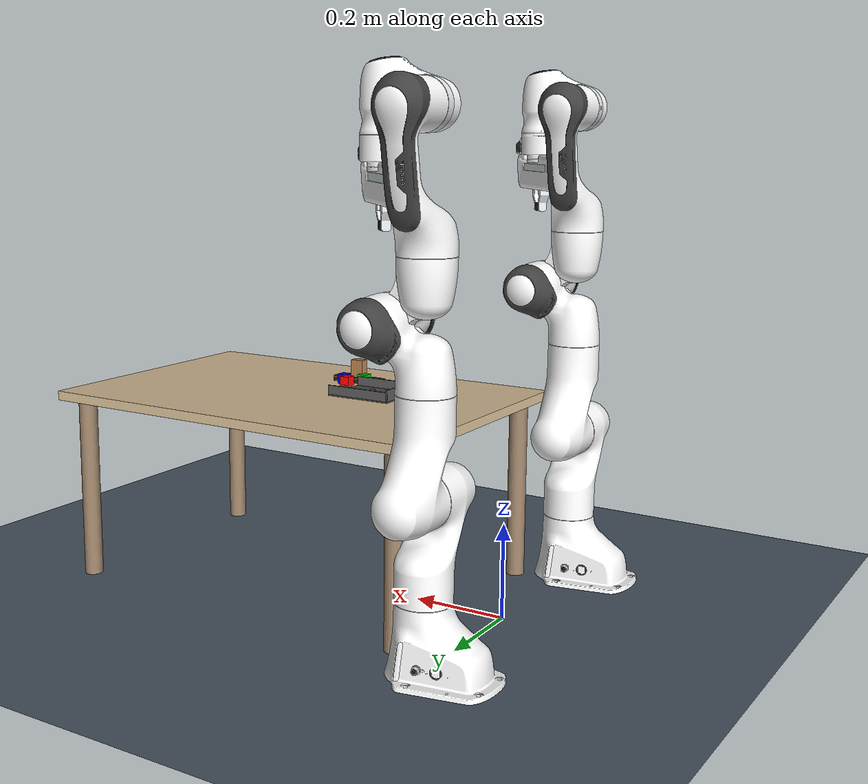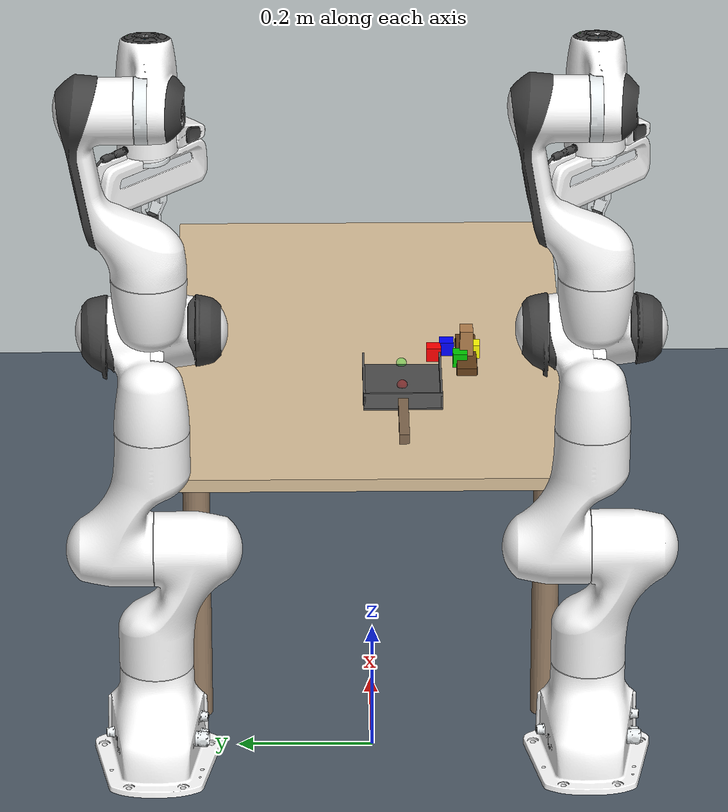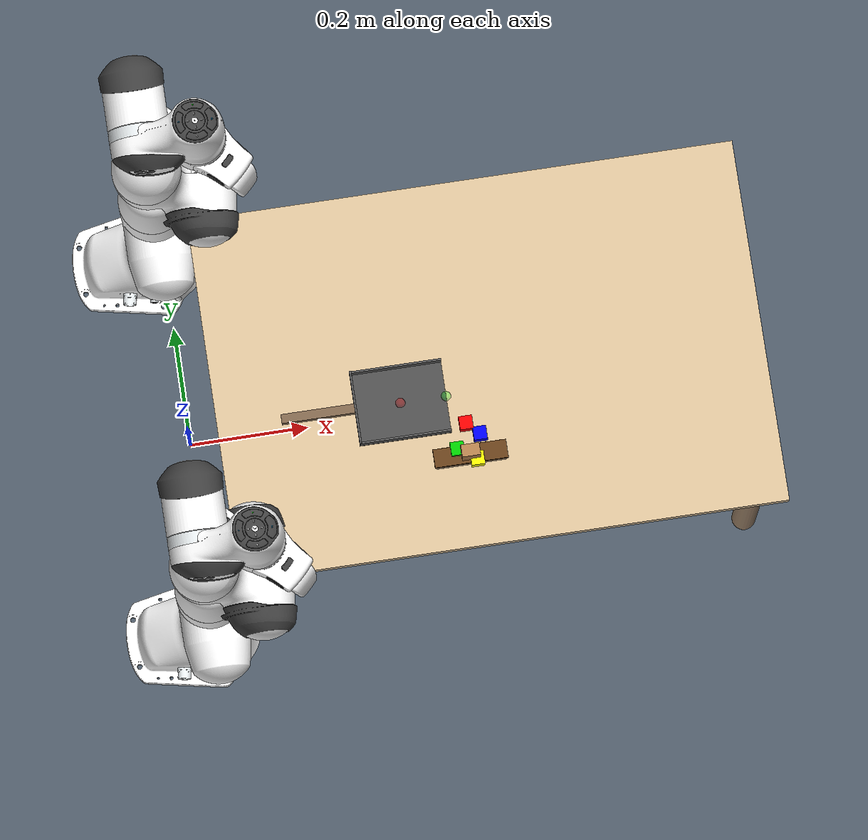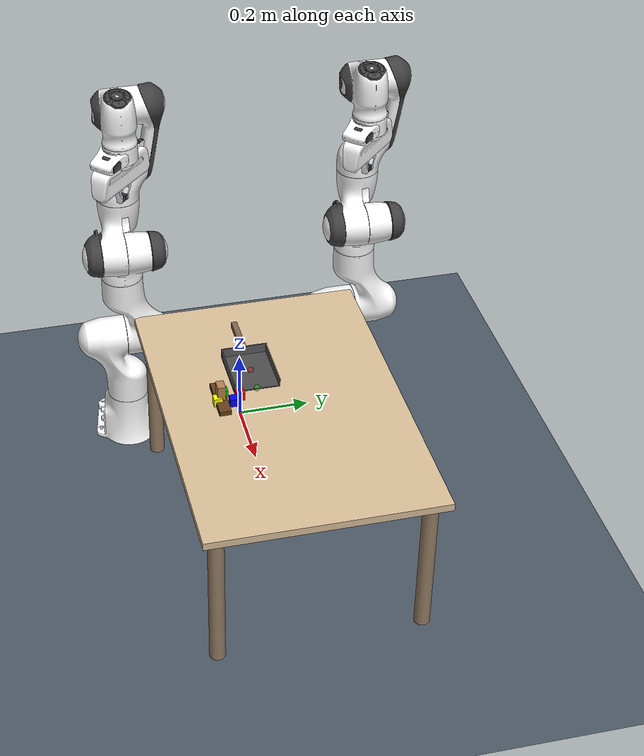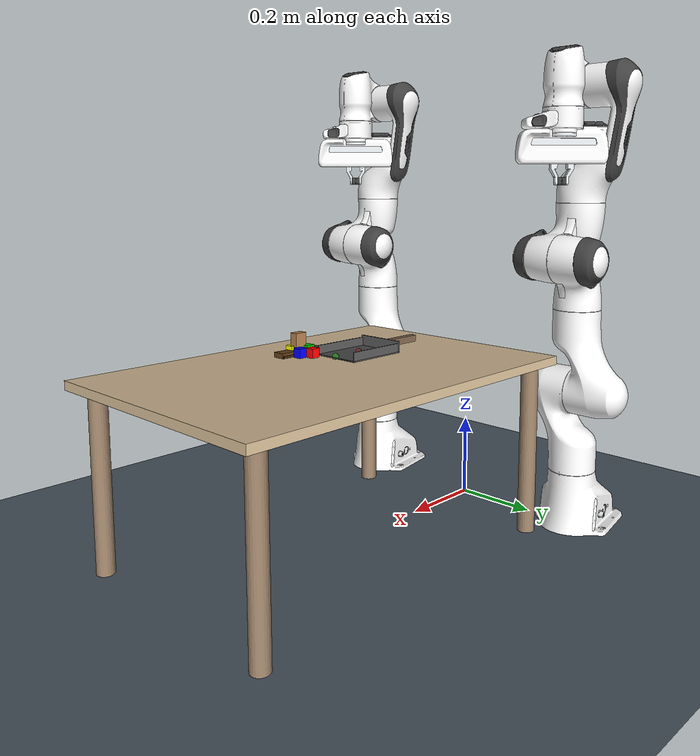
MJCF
<mujoco model="corl_bimanual_dustpan">

  <compiler angle="radian" autolimits="true"
            meshdir="../../../mujoco_menagerie/franka_emika_panda/assets"/>

  <option integrator="implicitfast"/>

  <include file="_panda_left.xml"/>
  <include file="_panda_right.xml"/>

  <visual>
    <headlight diffuse="0.5 0.5 0.5" ambient="0.25 0.25 0.25" specular="0.1 0.1 0.1"/>
    <rgba haze="0.15 0.25 0.35 1"/>
    <global azimuth="135" elevation="-25" offwidth="800" offheight="600"/>
  </visual>

  <statistic center="0.4 0 0.5" extent="1.5"/>

  <asset>
    <texture type="skybox" builtin="gradient" rgb1="0.3 0.5 0.8"
             rgb2="0.1 0.2 0.4" width="512" height="3072"/>
    <texture type="2d" name="lab_floor" builtin="checker"
             rgb1="0.35 0.4 0.45" rgb2="0.25 0.3 0.35" width="512" height="512"
             mark="cross" markrgb="0.8 0.8 0.9"/>
    <material name="groundplane" texture="lab_floor" texrepeat="20 20"
              reflectance="0.3" shininess="0.1"/>

    <!-- Table: light wood -->
    <material name="table_mat" rgba="0.85 0.75 0.6 1"
              reflectance="0.15" shininess="0.2" specular="0.1"/>

    <!-- Dustpan: dark gray with handle -->
    <material name="dustpan_mat" rgba="0.3 0.3 0.3 1"
              specular="0.3" shininess="0.2" reflectance="0.1"/>
    <material name="dustpan_wall_mat" rgba="0.35 0.35 0.35 1"
              specular="0.3" shininess="0.2" reflectance="0.1"/>
    <material name="dustpan_handle_mat" rgba="0.5 0.4 0.3 1"
              specular="0.2" shininess="0.15" reflectance="0.05"/>

    <!-- Brush: light brown handle, dark brown bristles -->
    <material name="brush_handle_mat" rgba="0.7 0.5 0.3 1"
              specular="0.2" shininess="0.1" reflectance="0.05"/>
    <material name="brush_bristle_mat" rgba="0.4 0.25 0.1 1"
              specular="0.05" shininess="0.02" reflectance="0.01"/>

    <!-- Debris: 4 bright distinct colors -->
    <material name="debris_red" rgba="1 0 0 1"
              specular="0.4" shininess="0.3"/>
    <material name="debris_blue" rgba="0 0 1 1"
              specular="0.4" shininess="0.3"/>
    <material name="debris_green" rgba="0 0.8 0 1"
              specular="0.4" shininess="0.3"/>
    <material name="debris_yellow" rgba="1 1 0 1"
              specular="0.4" shininess="0.3"/>
  </asset>

  <worldbody>
    <light pos="0 0 4" dir="0 0 -1" directional="true" diffuse="0.5 0.5 0.5"/>
    <light pos="2 2 3" dir="-0.5 -0.5 -1" diffuse="0.3 0.3 0.3"/>
    <light pos="0 -2 3" dir="0 0.5 -1" diffuse="0.2 0.2 0.2"/>
    <geom name="floor" size="10 10 0.01" type="plane" material="groundplane"/>

    <!-- Table: 900x600x20mm to span both arms' workspaces.
         Surface at z=0.42. -->
    <body name="table" pos="0.50 0 0.41">
      <geom name="table_top" type="box" size="0.45 0.30 0.01"
            pos="0 0 0" material="table_mat"
            friction="1.0 0.5 0.0001"/>
      <!-- Table legs -->
      <geom name="leg1" type="cylinder" size="0.02 0.20" pos="-0.40 -0.26 -0.21"
            rgba="0.6 0.5 0.4 1" contype="0" conaffinity="0"/>
      <geom name="leg2" type="cylinder" size="0.02 0.20" pos="0.40 -0.26 -0.21"
            rgba="0.6 0.5 0.4 1" contype="0" conaffinity="0"/>
      <geom name="leg3" type="cylinder" size="0.02 0.20" pos="-0.40 0.26 -0.21"
            rgba="0.6 0.5 0.4 1" contype="0" conaffinity="0"/>
      <geom name="leg4" type="cylinder" size="0.02 0.20" pos="0.40 0.26 -0.21"
            rgba="0.6 0.5 0.4 1" contype="0" conaffinity="0"/>
    </body>

    <body name="dustpan" pos="0.35 -0.05 0.42">
      <!-- Base plate: 150x120x3mm -->
      <geom name="dustpan_base" type="box" size="0.075 0.06 0.0015"
            pos="0 0 0.0015" material="dustpan_mat"
            friction="0.8 0.4 0.001"/>
      <!-- Back wall: at -X edge, 150-wide along Y, 25mm tall -->
      <geom name="dustpan_back" type="box" size="0.0015 0.06 0.0125"
            pos="-0.0735 0 0.0155" material="dustpan_wall_mat"
            friction="0.8 0.4 0.001"/>
      <!-- Left wall (Y-): 150x3x20mm -->
      <geom name="dustpan_left" type="box" size="0.075 0.0015 0.01"
            pos="0 -0.0585 0.013" material="dustpan_wall_mat"
            friction="0.8 0.4 0.001"/>
      <!-- Right wall (Y+): 150x3x20mm -->
      <geom name="dustpan_right" type="box" size="0.075 0.0015 0.01"
            pos="0 0.0585 0.013" material="dustpan_wall_mat"
            friction="0.8 0.4 0.001"/>
      <!-- Front lip: thin 1mm lip at +X edge to help scoop -->
      <geom name="dustpan_front_lip" type="box" size="0.0015 0.06 0.001"
            pos="0.0735 0 0.001" material="dustpan_wall_mat"
            friction="0.8 0.4 0.001"/>
      <!-- Handle: extends from back wall (-X direction), graspable box -->
      <geom name="dustpan_handle" type="box" size="0.06 0.0075 0.008"
            pos="-0.135 0 0.012" material="dustpan_handle_mat"
            condim="6" friction="1.5 0.8 0.002"/>

      <!-- Key sites for sweep direction computation -->
      <site name="dustpan_opening_site" pos="0.075 0 0.005" size="0.008"
            rgba="0 1 0 0.3"/>
      <site name="dustpan_center_site" pos="0 0 0.005" size="0.008"
            rgba="1 0 0 0.3"/>
    </body>

    <!--
      Brush: freejoint for right arm to grasp.
      Placed in the right arm's workspace area.
    -->
    <body name="brush" pos="0.45 -0.15 0.42">
      <freejoint name="brush_free"/>
      <!-- Bristle plate: 120x30x12mm -->
      <geom name="brush_bristle" type="box" size="0.06 0.015 0.006"
            pos="0 0 0.006" material="brush_bristle_mat"
            condim="6" friction="2.0 1.0 0.003"
            solimp="0.9 0.95 0.005" solref="0.02 1"/>
      <!-- Bristle fringe -->
      <geom name="brush_fringe" type="box" size="0.058 0.016 0.003"
            pos="0 0 0.003" rgba="0.25 0.15 0.05 1"
            condim="6" friction="2.0 1.0 0.003"
            solimp="0.9 0.95 0.005" solref="0.02 1"/>
      <!-- Handle block: 30x20x40mm on top of bristle plate.
           Width (Y) = 20mm so Panda fingers (40mm max) grip securely. -->
      <geom name="brush_handle" type="box" size="0.015 0.010 0.020"
            pos="0 0 0.032" material="brush_handle_mat"
            condim="6" friction="3.0 1.5 0.005"
            solimp="0.95 0.99 0.003" solref="0.01 1"/>
      <inertial pos="0 0 0.02" mass="0.05"
                diaginertia="0.00003 0.00002 0.00002"/>
    </body>

    <body name="debris_1" pos="0.45 -0.10 0.431">
      <freejoint name="debris_1_free"/>
      <geom name="debris_1_geom" type="box" size="0.011 0.011 0.011"
            material="debris_red"
            condim="6" friction="0.6 0.3 0.001"
            solimp="0.9 0.95 0.003" solref="0.02 1"
            mass="0.010"/>
      <inertial pos="0 0 0" mass="0.010"
                diaginertia="8e-7 8e-7 8e-7"/>
    </body>

    <body name="debris_2" pos="0.47 -0.12 0.431">
      <freejoint name="debris_2_free"/>
      <geom name="debris_2_geom" type="box" size="0.011 0.011 0.011"
            material="debris_blue"
            condim="6" friction="0.6 0.3 0.001"
            solimp="0.9 0.95 0.003" solref="0.02 1"
            mass="0.010"/>
      <inertial pos="0 0 0" mass="0.010"
                diaginertia="8e-7 8e-7 8e-7"/>
    </body>

    <body name="debris_3" pos="0.43 -0.14 0.431">
      <freejoint name="debris_3_free"/>
      <geom name="debris_3_geom" type="box" size="0.011 0.011 0.011"
            material="debris_green"
            condim="6" friction="0.6 0.3 0.001"
            solimp="0.9 0.95 0.003" solref="0.02 1"
            mass="0.010"/>
      <inertial pos="0 0 0" mass="0.010"
                diaginertia="8e-7 8e-7 8e-7"/>
    </body>

    <body name="debris_4" pos="0.46 -0.16 0.431">
      <freejoint name="debris_4_free"/>
      <geom name="debris_4_geom" type="box" size="0.011 0.011 0.011"
            material="debris_yellow"
            condim="6" friction="0.6 0.3 0.001"
            solimp="0.9 0.95 0.003" solref="0.02 1"
            mass="0.010"/>
      <inertial pos="0 0 0" mass="0.010"
                diaginertia="8e-7 8e-7 8e-7"/>
    </body>

    <!-- Cameras -->
    <body name="cam_target" pos="0.50 0.0 0.42">
      <site name="cam_target_site" pos="0 0 0" size="0.001" rgba="0 0 0 0"/>
    </body>

    <!-- Agentview: elevated 3/4 angle -->
    <body name="cam_agent_body" pos="1.3 -0.8 1.1">
      <camera name="agentview" fovy="55" pos="0 0 0"
              mode="targetbody" target="cam_target"/>
    </body>

    <!-- Sideview: from the right side -->
    <body name="cam_side_body" pos="0.50 -1.2 0.7">
      <camera name="sideview" fovy="55" pos="0 0 0"
              mode="targetbody" target="cam_target"/>
    </body>

    <!-- Topview: directly overhead -->
    <body name="cam_top_body" pos="0.50 0.0 1.7">
      <camera name="topview" fovy="50" pos="0 0 0"
              mode="targetbody" target="cam_target"/>
    </body>
  </worldbody>

  <equality>
    <weld body1="brush" body2="R_hand" active="false"
          solref="0.01 1" solimp="0.95 0.99 0.001"/>
  </equality>

  <!--
    Keyframe: L arm (9 qpos) + R arm (9 qpos) + dustpan (7 free)
    + brush (7 free) + 4 debris (7 free each) = 18 + 7 + 7 + 28 = 60 qpos.
    Actuators: L (8) + R (8) = 16 ctrl values.
  -->
  <!--
    Keyframe: L arm (9 qpos) + R arm (9 qpos) + brush (7 free)
    + 4 debris (7 free each) = 18 + 7 + 28 = 53 qpos.
    Actuators: L (8) + R (8) = 16 ctrl values.
  -->
  <keyframe>
    <key name="home"
         qpos="0 -0.785 0 -2.356 0 1.571 0.785 0.04 0.04
               0 -0.785 0 -2.356 0 1.571 0.785 0.04 0.04
               0.45 -0.15 0.42 1 0 0 0
               0.45 -0.10 0.431 1 0 0 0
               0.47 -0.12 0.431 1 0 0 0
               0.43 -0.14 0.431 1 0 0 0
               0.46 -0.16 0.431 1 0 0 0"
         ctrl="0 -0.785 0 -2.356 0 1.571 0.785 255
               0 -0.785 0 -2.356 0 1.571 0.785 255"/>
  </keyframe>
</mujoco>

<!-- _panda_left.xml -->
<mujoco model="panda_left">

  <default>
    <default class="panda_L">
      <material specular="0.5" shininess="0.25"/>
      <joint armature="0.1" damping="1" axis="0 0 1" range="-2.8973 2.8973"/>
      <general dyntype="none" biastype="affine" ctrlrange="-2.8973 2.8973" forcerange="-87 87"/>
      <default class="finger_L">
        <joint axis="0 1 0" type="slide" range="0 0.04"/>
      </default>
      <default class="visual_L">
        <geom type="mesh" contype="0" conaffinity="0" group="2"/>
      </default>
      <default class="collision_L">
        <geom type="mesh" group="3"/>
        <default class="fingertip_pad_collision_L1">
          <geom type="box" size="0.0085 0.004 0.0085" pos="0 0.0055 0.0445"
                friction="5 2 0.01" condim="6" solimp="0.95 0.99 0.005" solref="0.01 1"/>
        </default>
        <default class="fingertip_pad_collision_L2">
          <geom type="box" size="0.003 0.002 0.003" pos="0.0055 0.002 0.05"
                friction="5 2 0.01" condim="6"/>
        </default>
        <default class="fingertip_pad_collision_L3">
          <geom type="box" size="0.003 0.002 0.003" pos="-0.0055 0.002 0.05"
                friction="5 2 0.01" condim="6"/>
        </default>
        <default class="fingertip_pad_collision_L4">
          <geom type="box" size="0.003 0.002 0.0035" pos="0.0055 0.002 0.0395"
                friction="5 2 0.01" condim="6"/>
        </default>
        <default class="fingertip_pad_collision_L5">
          <geom type="box" size="0.003 0.002 0.0035" pos="-0.0055 0.002 0.0395"
                friction="5 2 0.01" condim="6"/>
        </default>
      </default>
    </default>
  </default>

  <asset>
    <material class="panda_L" name="L_white" rgba="1 1 1 1"/>
    <material class="panda_L" name="L_off_white" rgba="0.901961 0.921569 0.929412 1"/>
    <material class="panda_L" name="L_black" rgba="0.25 0.25 0.25 1"/>
    <material class="panda_L" name="L_green" rgba="0 1 0 1"/>
    <material class="panda_L" name="L_light_blue" rgba="0.039216 0.541176 0.780392 1"/>

    <mesh name="L_link0_c" file="link0.stl"/>
    <mesh name="L_link1_c" file="link1.stl"/>
    <mesh name="L_link2_c" file="link2.stl"/>
    <mesh name="L_link3_c" file="link3.stl"/>
    <mesh name="L_link4_c" file="link4.stl"/>
    <mesh name="L_link5_c0" file="link5_collision_0.obj"/>
    <mesh name="L_link5_c1" file="link5_collision_1.obj"/>
    <mesh name="L_link5_c2" file="link5_collision_2.obj"/>
    <mesh name="L_link6_c" file="link6.stl"/>
    <mesh name="L_link7_c" file="link7.stl"/>
    <mesh name="L_hand_c" file="hand.stl"/>

    <mesh name="L_link0_0" file="link0_0.obj"/>
    <mesh name="L_link0_1" file="link0_1.obj"/>
    <mesh name="L_link0_2" file="link0_2.obj"/>
    <mesh name="L_link0_3" file="link0_3.obj"/>
    <mesh name="L_link0_4" file="link0_4.obj"/>
    <mesh name="L_link0_5" file="link0_5.obj"/>
    <mesh name="L_link0_7" file="link0_7.obj"/>
    <mesh name="L_link0_8" file="link0_8.obj"/>
    <mesh name="L_link0_9" file="link0_9.obj"/>
    <mesh name="L_link0_10" file="link0_10.obj"/>
    <mesh name="L_link0_11" file="link0_11.obj"/>
    <mesh name="L_link1" file="link1.obj"/>
    <mesh name="L_link2" file="link2.obj"/>
    <mesh name="L_link3_0" file="link3_0.obj"/>
    <mesh name="L_link3_1" file="link3_1.obj"/>
    <mesh name="L_link3_2" file="link3_2.obj"/>
    <mesh name="L_link3_3" file="link3_3.obj"/>
    <mesh name="L_link4_0" file="link4_0.obj"/>
    <mesh name="L_link4_1" file="link4_1.obj"/>
    <mesh name="L_link4_2" file="link4_2.obj"/>
    <mesh name="L_link4_3" file="link4_3.obj"/>
    <mesh name="L_link5_0" file="link5_0.obj"/>
    <mesh name="L_link5_1" file="link5_1.obj"/>
    <mesh name="L_link5_2" file="link5_2.obj"/>
    <mesh name="L_link6_0" file="link6_0.obj"/>
    <mesh name="L_link6_1" file="link6_1.obj"/>
    <mesh name="L_link6_2" file="link6_2.obj"/>
    <mesh name="L_link6_3" file="link6_3.obj"/>
    <mesh name="L_link6_4" file="link6_4.obj"/>
    <mesh name="L_link6_5" file="link6_5.obj"/>
    <mesh name="L_link6_6" file="link6_6.obj"/>
    <mesh name="L_link6_7" file="link6_7.obj"/>
    <mesh name="L_link6_8" file="link6_8.obj"/>
    <mesh name="L_link6_9" file="link6_9.obj"/>
    <mesh name="L_link6_10" file="link6_10.obj"/>
    <mesh name="L_link6_11" file="link6_11.obj"/>
    <mesh name="L_link6_12" file="link6_12.obj"/>
    <mesh name="L_link6_13" file="link6_13.obj"/>
    <mesh name="L_link6_14" file="link6_14.obj"/>
    <mesh name="L_link6_15" file="link6_15.obj"/>
    <mesh name="L_link6_16" file="link6_16.obj"/>
    <mesh name="L_link7_0" file="link7_0.obj"/>
    <mesh name="L_link7_1" file="link7_1.obj"/>
    <mesh name="L_link7_2" file="link7_2.obj"/>
    <mesh name="L_link7_3" file="link7_3.obj"/>
    <mesh name="L_link7_4" file="link7_4.obj"/>
    <mesh name="L_link7_5" file="link7_5.obj"/>
    <mesh name="L_link7_6" file="link7_6.obj"/>
    <mesh name="L_link7_7" file="link7_7.obj"/>
    <mesh name="L_hand_0" file="hand_0.obj"/>
    <mesh name="L_hand_1" file="hand_1.obj"/>
    <mesh name="L_hand_2" file="hand_2.obj"/>
    <mesh name="L_hand_3" file="hand_3.obj"/>
    <mesh name="L_hand_4" file="hand_4.obj"/>
    <mesh name="L_finger_0" file="finger_0.obj"/>
    <mesh name="L_finger_1" file="finger_1.obj"/>
  </asset>

  <worldbody>
    <body name="L_link0" pos="0 0.32 0" childclass="panda_L">
      <inertial mass="0.629769" pos="-0.041018 -0.00014 0.049974"
        fullinertia="0.00315 0.00388 0.004285 8.2904e-7 0.00015 8.2299e-6"/>
      <geom mesh="L_link0_0" material="L_off_white" class="visual_L"/>
      <geom mesh="L_link0_1" material="L_black" class="visual_L"/>
      <geom mesh="L_link0_2" material="L_off_white" class="visual_L"/>
      <geom mesh="L_link0_3" material="L_black" class="visual_L"/>
      <geom mesh="L_link0_4" material="L_off_white" class="visual_L"/>
      <geom mesh="L_link0_5" material="L_black" class="visual_L"/>
      <geom mesh="L_link0_7" material="L_white" class="visual_L"/>
      <geom mesh="L_link0_8" material="L_white" class="visual_L"/>
      <geom mesh="L_link0_9" material="L_black" class="visual_L"/>
      <geom mesh="L_link0_10" material="L_off_white" class="visual_L"/>
      <geom mesh="L_link0_11" material="L_white" class="visual_L"/>
      <geom mesh="L_link0_c" class="collision_L"/>
      <body name="L_link1" pos="0 0 0.333">
        <inertial mass="4.970684" pos="0.003875 0.002081 -0.04762"
          fullinertia="0.70337 0.70661 0.0091170 -0.00013900 0.0067720 0.019169"/>
        <joint name="L_joint1"/>
        <geom material="L_white" mesh="L_link1" class="visual_L"/>
        <geom mesh="L_link1_c" class="collision_L"/>
        <body name="L_link2" quat="1 -1 0 0">
          <inertial mass="0.646926" pos="-0.003141 -0.02872 0.003495"
            fullinertia="0.0079620 2.8110e-2 2.5995e-2 -3.925e-3 1.0254e-2 7.04e-4"/>
          <joint name="L_joint2" range="-1.7628 1.7628"/>
          <geom material="L_white" mesh="L_link2" class="visual_L"/>
          <geom mesh="L_link2_c" class="collision_L"/>
          <body name="L_link3" pos="0 -0.316 0" quat="1 1 0 0">
            <joint name="L_joint3"/>
            <inertial mass="3.228604" pos="2.7518e-2 3.9252e-2 -6.6502e-2"
              fullinertia="3.7242e-2 3.6155e-2 1.083e-2 -4.761e-3 -1.1396e-2 -1.2805e-2"/>
            <geom mesh="L_link3_0" material="L_white" class="visual_L"/>
            <geom mesh="L_link3_1" material="L_white" class="visual_L"/>
            <geom mesh="L_link3_2" material="L_white" class="visual_L"/>
            <geom mesh="L_link3_3" material="L_black" class="visual_L"/>
            <geom mesh="L_link3_c" class="collision_L"/>
            <body name="L_link4" pos="0.0825 0 0" quat="1 1 0 0">
              <inertial mass="3.587895" pos="-5.317e-2 1.04419e-1 2.7454e-2"
                fullinertia="2.5853e-2 1.9552e-2 2.8323e-2 7.796e-3 -1.332e-3 8.641e-3"/>
              <joint name="L_joint4" range="-3.0718 -0.0698"/>
              <geom mesh="L_link4_0" material="L_white" class="visual_L"/>
              <geom mesh="L_link4_1" material="L_white" class="visual_L"/>
              <geom mesh="L_link4_2" material="L_black" class="visual_L"/>
              <geom mesh="L_link4_3" material="L_white" class="visual_L"/>
              <geom mesh="L_link4_c" class="collision_L"/>
              <body name="L_link5" pos="-0.0825 0.384 0" quat="1 -1 0 0">
                <inertial mass="1.225946" pos="-1.1953e-2 4.1065e-2 -3.8437e-2"
                  fullinertia="3.5549e-2 2.9474e-2 8.627e-3 -2.117e-3 -4.037e-3 2.29e-4"/>
                <joint name="L_joint5"/>
                <geom mesh="L_link5_0" material="L_black" class="visual_L"/>
                <geom mesh="L_link5_1" material="L_white" class="visual_L"/>
                <geom mesh="L_link5_2" material="L_white" class="visual_L"/>
                <geom mesh="L_link5_c0" class="collision_L"/>
                <geom mesh="L_link5_c1" class="collision_L"/>
                <geom mesh="L_link5_c2" class="collision_L"/>
                <body name="L_link6" quat="1 1 0 0">
                  <inertial mass="1.666555" pos="6.0149e-2 -1.4117e-2 -1.0517e-2"
                    fullinertia="1.964e-3 4.354e-3 5.433e-3 1.09e-4 -1.158e-3 3.41e-4"/>
                  <joint name="L_joint6" range="-0.0175 3.7525"/>
                  <geom mesh="L_link6_0" material="L_off_white" class="visual_L"/>
                  <geom mesh="L_link6_1" material="L_white" class="visual_L"/>
                  <geom mesh="L_link6_2" material="L_black" class="visual_L"/>
                  <geom mesh="L_link6_3" material="L_white" class="visual_L"/>
                  <geom mesh="L_link6_4" material="L_white" class="visual_L"/>
                  <geom mesh="L_link6_5" material="L_white" class="visual_L"/>
                  <geom mesh="L_link6_6" material="L_white" class="visual_L"/>
                  <geom mesh="L_link6_7" material="L_light_blue" class="visual_L"/>
                  <geom mesh="L_link6_8" material="L_light_blue" class="visual_L"/>
                  <geom mesh="L_link6_9" material="L_black" class="visual_L"/>
                  <geom mesh="L_link6_10" material="L_black" class="visual_L"/>
                  <geom mesh="L_link6_11" material="L_white" class="visual_L"/>
                  <geom mesh="L_link6_12" material="L_green" class="visual_L"/>
                  <geom mesh="L_link6_13" material="L_white" class="visual_L"/>
                  <geom mesh="L_link6_14" material="L_black" class="visual_L"/>
                  <geom mesh="L_link6_15" material="L_black" class="visual_L"/>
                  <geom mesh="L_link6_16" material="L_white" class="visual_L"/>
                  <geom mesh="L_link6_c" class="collision_L"/>
                  <body name="L_link7" pos="0.088 0 0" quat="1 1 0 0">
                    <inertial mass="7.35522e-01" pos="1.0517e-2 -4.252e-3 6.1597e-2"
                      fullinertia="1.2516e-2 1.0027e-2 4.815e-3 -4.28e-4 -1.196e-3 -7.41e-4"/>
                    <joint name="L_joint7"/>
                    <geom mesh="L_link7_0" material="L_white" class="visual_L"/>
                    <geom mesh="L_link7_1" material="L_black" class="visual_L"/>
                    <geom mesh="L_link7_2" material="L_black" class="visual_L"/>
                    <geom mesh="L_link7_3" material="L_black" class="visual_L"/>
                    <geom mesh="L_link7_4" material="L_black" class="visual_L"/>
                    <geom mesh="L_link7_5" material="L_black" class="visual_L"/>
                    <geom mesh="L_link7_6" material="L_black" class="visual_L"/>
                    <geom mesh="L_link7_7" material="L_white" class="visual_L"/>
                    <geom mesh="L_link7_c" class="collision_L"/>
                    <body name="L_hand" pos="0 0 0.107" quat="0.9238795 0 0 -0.3826834">
                      <inertial mass="0.73" pos="-0.01 0 0.03" diaginertia="0.001 0.0025 0.0017"/>
                      <site name="L_pinch" pos="0 0 0.1034" size="0.005"
                            rgba="0 0 1 0.5" group="4"/>
                      <geom mesh="L_hand_0" material="L_off_white" class="visual_L"/>
                      <geom mesh="L_hand_1" material="L_black" class="visual_L"/>
                      <geom mesh="L_hand_2" material="L_black" class="visual_L"/>
                      <geom mesh="L_hand_3" material="L_white" class="visual_L"/>
                      <geom mesh="L_hand_4" material="L_off_white" class="visual_L"/>
                      <geom mesh="L_hand_c" class="collision_L"/>
                      <body name="L_left_finger" pos="0 0 0.0584">
                        <inertial mass="0.015" pos="0 0 0" diaginertia="2.375e-6 2.375e-6 7.5e-7"/>
                        <joint name="L_finger_joint1" class="finger_L"/>
                        <geom mesh="L_finger_0" material="L_off_white" class="visual_L"/>
                        <geom mesh="L_finger_1" material="L_black" class="visual_L"/>
                        <geom mesh="L_finger_0" class="collision_L"/>
                        <geom class="fingertip_pad_collision_L1"/>
                        <geom class="fingertip_pad_collision_L2"/>
                        <geom class="fingertip_pad_collision_L3"/>
                        <geom class="fingertip_pad_collision_L4"/>
                        <geom class="fingertip_pad_collision_L5"/>
                      </body>
                      <body name="L_right_finger" pos="0 0 0.0584" quat="0 0 0 1">
                        <inertial mass="0.015" pos="0 0 0" diaginertia="2.375e-6 2.375e-6 7.5e-7"/>
                        <joint name="L_finger_joint2" class="finger_L"/>
                        <geom mesh="L_finger_0" material="L_off_white" class="visual_L"/>
                        <geom mesh="L_finger_1" material="L_black" class="visual_L"/>
                        <geom mesh="L_finger_0" class="collision_L"/>
                        <geom class="fingertip_pad_collision_L1"/>
                        <geom class="fingertip_pad_collision_L2"/>
                        <geom class="fingertip_pad_collision_L3"/>
                        <geom class="fingertip_pad_collision_L4"/>
                        <geom class="fingertip_pad_collision_L5"/>
                      </body>
                    </body>
                  </body>
                </body>
              </body>
            </body>
          </body>
        </body>
      </body>
    </body>
  </worldbody>

  <tendon>
    <fixed name="L_split">
      <joint joint="L_finger_joint1" coef="0.5"/>
      <joint joint="L_finger_joint2" coef="0.5"/>
    </fixed>
  </tendon>

  <equality>
    <joint joint1="L_finger_joint1" joint2="L_finger_joint2" solimp="0.95 0.99 0.001" solref="0.005 1"/>
  </equality>

  <actuator>
    <general class="panda_L" name="L_actuator1" joint="L_joint1" gainprm="4500" biasprm="0 -4500 -450"/>
    <general class="panda_L" name="L_actuator2" joint="L_joint2" gainprm="4500" biasprm="0 -4500 -450"
      ctrlrange="-1.7628 1.7628"/>
    <general class="panda_L" name="L_actuator3" joint="L_joint3" gainprm="3500" biasprm="0 -3500 -350"/>
    <general class="panda_L" name="L_actuator4" joint="L_joint4" gainprm="3500" biasprm="0 -3500 -350"
      ctrlrange="-3.0718 -0.0698"/>
    <general class="panda_L" name="L_actuator5" joint="L_joint5" gainprm="2000" biasprm="0 -2000 -200" forcerange="-12 12"/>
    <general class="panda_L" name="L_actuator6" joint="L_joint6" gainprm="2000" biasprm="0 -2000 -200" forcerange="-12 12"
      ctrlrange="-0.0175 3.7525"/>
    <general class="panda_L" name="L_actuator7" joint="L_joint7" gainprm="2000" biasprm="0 -2000 -200" forcerange="-12 12"/>
    <general class="panda_L" name="L_actuator8" tendon="L_split" forcerange="-2000 2000" ctrlrange="0 255"
      gainprm="0.3137254902 0 0" biasprm="0 -2000 -200"/>
  </actuator>

  <contact>
    <exclude body1="L_link0" body2="L_link1"/>
  </contact>
</mujoco>

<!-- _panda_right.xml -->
<mujoco model="panda_right">

  <default>
    <default class="panda_R">
      <material specular="0.5" shininess="0.25"/>
      <joint armature="0.1" damping="1" axis="0 0 1" range="-2.8973 2.8973"/>
      <general dyntype="none" biastype="affine" ctrlrange="-2.8973 2.8973" forcerange="-87 87"/>
      <default class="finger_R">
        <joint axis="0 1 0" type="slide" range="0 0.04"/>
      </default>
      <default class="visual_R">
        <geom type="mesh" contype="0" conaffinity="0" group="2"/>
      </default>
      <default class="collision_R">
        <geom type="mesh" group="3"/>
        <default class="fingertip_pad_collision_R1">
          <geom type="box" size="0.0085 0.004 0.0085" pos="0 0.0055 0.0445"
                friction="5 2 0.01" condim="6" solimp="0.95 0.99 0.005" solref="0.01 1"/>
        </default>
        <default class="fingertip_pad_collision_R2">
          <geom type="box" size="0.003 0.002 0.003" pos="0.0055 0.002 0.05"
                friction="5 2 0.01" condim="6"/>
        </default>
        <default class="fingertip_pad_collision_R3">
          <geom type="box" size="0.003 0.002 0.003" pos="-0.0055 0.002 0.05"
                friction="5 2 0.01" condim="6"/>
        </default>
        <default class="fingertip_pad_collision_R4">
          <geom type="box" size="0.003 0.002 0.0035" pos="0.0055 0.002 0.0395"
                friction="5 2 0.01" condim="6"/>
        </default>
        <default class="fingertip_pad_collision_R5">
          <geom type="box" size="0.003 0.002 0.0035" pos="-0.0055 0.002 0.0395"
                friction="5 2 0.01" condim="6"/>
        </default>
      </default>
    </default>
  </default>

  <asset>
    <material class="panda_R" name="R_white" rgba="1 1 1 1"/>
    <material class="panda_R" name="R_off_white" rgba="0.901961 0.921569 0.929412 1"/>
    <material class="panda_R" name="R_black" rgba="0.25 0.25 0.25 1"/>
    <material class="panda_R" name="R_green" rgba="0 1 0 1"/>
    <material class="panda_R" name="R_light_blue" rgba="0.039216 0.541176 0.780392 1"/>

    <mesh name="R_link0_c" file="link0.stl"/>
    <mesh name="R_link1_c" file="link1.stl"/>
    <mesh name="R_link2_c" file="link2.stl"/>
    <mesh name="R_link3_c" file="link3.stl"/>
    <mesh name="R_link4_c" file="link4.stl"/>
    <mesh name="R_link5_c0" file="link5_collision_0.obj"/>
    <mesh name="R_link5_c1" file="link5_collision_1.obj"/>
    <mesh name="R_link5_c2" file="link5_collision_2.obj"/>
    <mesh name="R_link6_c" file="link6.stl"/>
    <mesh name="R_link7_c" file="link7.stl"/>
    <mesh name="R_hand_c" file="hand.stl"/>

    <mesh name="R_link0_0" file="link0_0.obj"/>
    <mesh name="R_link0_1" file="link0_1.obj"/>
    <mesh name="R_link0_2" file="link0_2.obj"/>
    <mesh name="R_link0_3" file="link0_3.obj"/>
    <mesh name="R_link0_4" file="link0_4.obj"/>
    <mesh name="R_link0_5" file="link0_5.obj"/>
    <mesh name="R_link0_7" file="link0_7.obj"/>
    <mesh name="R_link0_8" file="link0_8.obj"/>
    <mesh name="R_link0_9" file="link0_9.obj"/>
    <mesh name="R_link0_10" file="link0_10.obj"/>
    <mesh name="R_link0_11" file="link0_11.obj"/>
    <mesh name="R_link1" file="link1.obj"/>
    <mesh name="R_link2" file="link2.obj"/>
    <mesh name="R_link3_0" file="link3_0.obj"/>
    <mesh name="R_link3_1" file="link3_1.obj"/>
    <mesh name="R_link3_2" file="link3_2.obj"/>
    <mesh name="R_link3_3" file="link3_3.obj"/>
    <mesh name="R_link4_0" file="link4_0.obj"/>
    <mesh name="R_link4_1" file="link4_1.obj"/>
    <mesh name="R_link4_2" file="link4_2.obj"/>
    <mesh name="R_link4_3" file="link4_3.obj"/>
    <mesh name="R_link5_0" file="link5_0.obj"/>
    <mesh name="R_link5_1" file="link5_1.obj"/>
    <mesh name="R_link5_2" file="link5_2.obj"/>
    <mesh name="R_link6_0" file="link6_0.obj"/>
    <mesh name="R_link6_1" file="link6_1.obj"/>
    <mesh name="R_link6_2" file="link6_2.obj"/>
    <mesh name="R_link6_3" file="link6_3.obj"/>
    <mesh name="R_link6_4" file="link6_4.obj"/>
    <mesh name="R_link6_5" file="link6_5.obj"/>
    <mesh name="R_link6_6" file="link6_6.obj"/>
    <mesh name="R_link6_7" file="link6_7.obj"/>
    <mesh name="R_link6_8" file="link6_8.obj"/>
    <mesh name="R_link6_9" file="link6_9.obj"/>
    <mesh name="R_link6_10" file="link6_10.obj"/>
    <mesh name="R_link6_11" file="link6_11.obj"/>
    <mesh name="R_link6_12" file="link6_12.obj"/>
    <mesh name="R_link6_13" file="link6_13.obj"/>
    <mesh name="R_link6_14" file="link6_14.obj"/>
    <mesh name="R_link6_15" file="link6_15.obj"/>
    <mesh name="R_link6_16" file="link6_16.obj"/>
    <mesh name="R_link7_0" file="link7_0.obj"/>
    <mesh name="R_link7_1" file="link7_1.obj"/>
    <mesh name="R_link7_2" file="link7_2.obj"/>
    <mesh name="R_link7_3" file="link7_3.obj"/>
    <mesh name="R_link7_4" file="link7_4.obj"/>
    <mesh name="R_link7_5" file="link7_5.obj"/>
    <mesh name="R_link7_6" file="link7_6.obj"/>
    <mesh name="R_link7_7" file="link7_7.obj"/>
    <mesh name="R_hand_0" file="hand_0.obj"/>
    <mesh name="R_hand_1" file="hand_1.obj"/>
    <mesh name="R_hand_2" file="hand_2.obj"/>
    <mesh name="R_hand_3" file="hand_3.obj"/>
    <mesh name="R_hand_4" file="hand_4.obj"/>
    <mesh name="R_finger_0" file="finger_0.obj"/>
    <mesh name="R_finger_1" file="finger_1.obj"/>
  </asset>

  <worldbody>
    <body name="R_link0" pos="0 -0.32 0" childclass="panda_R">
      <inertial mass="0.629769" pos="-0.041018 -0.00014 0.049974"
        fullinertia="0.00315 0.00388 0.004285 8.2904e-7 0.00015 8.2299e-6"/>
      <geom mesh="R_link0_0" material="R_off_white" class="visual_R"/>
      <geom mesh="R_link0_1" material="R_black" class="visual_R"/>
      <geom mesh="R_link0_2" material="R_off_white" class="visual_R"/>
      <geom mesh="R_link0_3" material="R_black" class="visual_R"/>
      <geom mesh="R_link0_4" material="R_off_white" class="visual_R"/>
      <geom mesh="R_link0_5" material="R_black" class="visual_R"/>
      <geom mesh="R_link0_7" material="R_white" class="visual_R"/>
      <geom mesh="R_link0_8" material="R_white" class="visual_R"/>
      <geom mesh="R_link0_9" material="R_black" class="visual_R"/>
      <geom mesh="R_link0_10" material="R_off_white" class="visual_R"/>
      <geom mesh="R_link0_11" material="R_white" class="visual_R"/>
      <geom mesh="R_link0_c" class="collision_R"/>
      <body name="R_link1" pos="0 0 0.333">
        <inertial mass="4.970684" pos="0.003875 0.002081 -0.04762"
          fullinertia="0.70337 0.70661 0.0091170 -0.00013900 0.0067720 0.019169"/>
        <joint name="R_joint1"/>
        <geom material="R_white" mesh="R_link1" class="visual_R"/>
        <geom mesh="R_link1_c" class="collision_R"/>
        <body name="R_link2" quat="1 -1 0 0">
          <inertial mass="0.646926" pos="-0.003141 -0.02872 0.003495"
            fullinertia="0.0079620 2.8110e-2 2.5995e-2 -3.925e-3 1.0254e-2 7.04e-4"/>
          <joint name="R_joint2" range="-1.7628 1.7628"/>
          <geom material="R_white" mesh="R_link2" class="visual_R"/>
          <geom mesh="R_link2_c" class="collision_R"/>
          <body name="R_link3" pos="0 -0.316 0" quat="1 1 0 0">
            <joint name="R_joint3"/>
            <inertial mass="3.228604" pos="2.7518e-2 3.9252e-2 -6.6502e-2"
              fullinertia="3.7242e-2 3.6155e-2 1.083e-2 -4.761e-3 -1.1396e-2 -1.2805e-2"/>
            <geom mesh="R_link3_0" material="R_white" class="visual_R"/>
            <geom mesh="R_link3_1" material="R_white" class="visual_R"/>
            <geom mesh="R_link3_2" material="R_white" class="visual_R"/>
            <geom mesh="R_link3_3" material="R_black" class="visual_R"/>
            <geom mesh="R_link3_c" class="collision_R"/>
            <body name="R_link4" pos="0.0825 0 0" quat="1 1 0 0">
              <inertial mass="3.587895" pos="-5.317e-2 1.04419e-1 2.7454e-2"
                fullinertia="2.5853e-2 1.9552e-2 2.8323e-2 7.796e-3 -1.332e-3 8.641e-3"/>
              <joint name="R_joint4" range="-3.0718 -0.0698"/>
              <geom mesh="R_link4_0" material="R_white" class="visual_R"/>
              <geom mesh="R_link4_1" material="R_white" class="visual_R"/>
              <geom mesh="R_link4_2" material="R_black" class="visual_R"/>
              <geom mesh="R_link4_3" material="R_white" class="visual_R"/>
              <geom mesh="R_link4_c" class="collision_R"/>
              <body name="R_link5" pos="-0.0825 0.384 0" quat="1 -1 0 0">
                <inertial mass="1.225946" pos="-1.1953e-2 4.1065e-2 -3.8437e-2"
                  fullinertia="3.5549e-2 2.9474e-2 8.627e-3 -2.117e-3 -4.037e-3 2.29e-4"/>
                <joint name="R_joint5"/>
                <geom mesh="R_link5_0" material="R_black" class="visual_R"/>
                <geom mesh="R_link5_1" material="R_white" class="visual_R"/>
                <geom mesh="R_link5_2" material="R_white" class="visual_R"/>
                <geom mesh="R_link5_c0" class="collision_R"/>
                <geom mesh="R_link5_c1" class="collision_R"/>
                <geom mesh="R_link5_c2" class="collision_R"/>
                <body name="R_link6" quat="1 1 0 0">
                  <inertial mass="1.666555" pos="6.0149e-2 -1.4117e-2 -1.0517e-2"
                    fullinertia="1.964e-3 4.354e-3 5.433e-3 1.09e-4 -1.158e-3 3.41e-4"/>
                  <joint name="R_joint6" range="-0.0175 3.7525"/>
                  <geom mesh="R_link6_0" material="R_off_white" class="visual_R"/>
                  <geom mesh="R_link6_1" material="R_white" class="visual_R"/>
                  <geom mesh="R_link6_2" material="R_black" class="visual_R"/>
                  <geom mesh="R_link6_3" material="R_white" class="visual_R"/>
                  <geom mesh="R_link6_4" material="R_white" class="visual_R"/>
                  <geom mesh="R_link6_5" material="R_white" class="visual_R"/>
                  <geom mesh="R_link6_6" material="R_white" class="visual_R"/>
                  <geom mesh="R_link6_7" material="R_light_blue" class="visual_R"/>
                  <geom mesh="R_link6_8" material="R_light_blue" class="visual_R"/>
                  <geom mesh="R_link6_9" material="R_black" class="visual_R"/>
                  <geom mesh="R_link6_10" material="R_black" class="visual_R"/>
                  <geom mesh="R_link6_11" material="R_white" class="visual_R"/>
                  <geom mesh="R_link6_12" material="R_green" class="visual_R"/>
                  <geom mesh="R_link6_13" material="R_white" class="visual_R"/>
                  <geom mesh="R_link6_14" material="R_black" class="visual_R"/>
                  <geom mesh="R_link6_15" material="R_black" class="visual_R"/>
                  <geom mesh="R_link6_16" material="R_white" class="visual_R"/>
                  <geom mesh="R_link6_c" class="collision_R"/>
                  <body name="R_link7" pos="0.088 0 0" quat="1 1 0 0">
                    <inertial mass="7.35522e-01" pos="1.0517e-2 -4.252e-3 6.1597e-2"
                      fullinertia="1.2516e-2 1.0027e-2 4.815e-3 -4.28e-4 -1.196e-3 -7.41e-4"/>
                    <joint name="R_joint7"/>
                    <geom mesh="R_link7_0" material="R_white" class="visual_R"/>
                    <geom mesh="R_link7_1" material="R_black" class="visual_R"/>
                    <geom mesh="R_link7_2" material="R_black" class="visual_R"/>
                    <geom mesh="R_link7_3" material="R_black" class="visual_R"/>
                    <geom mesh="R_link7_4" material="R_black" class="visual_R"/>
                    <geom mesh="R_link7_5" material="R_black" class="visual_R"/>
                    <geom mesh="R_link7_6" material="R_black" class="visual_R"/>
                    <geom mesh="R_link7_7" material="R_white" class="visual_R"/>
                    <geom mesh="R_link7_c" class="collision_R"/>
                    <body name="R_hand" pos="0 0 0.107" quat="0.9238795 0 0 -0.3826834">
                      <inertial mass="0.73" pos="-0.01 0 0.03" diaginertia="0.001 0.0025 0.0017"/>
                      <site name="R_pinch" pos="0 0 0.1034" size="0.005"
                            rgba="1 0 0 0.5" group="4"/>
                      <geom mesh="R_hand_0" material="R_off_white" class="visual_R"/>
                      <geom mesh="R_hand_1" material="R_black" class="visual_R"/>
                      <geom mesh="R_hand_2" material="R_black" class="visual_R"/>
                      <geom mesh="R_hand_3" material="R_white" class="visual_R"/>
                      <geom mesh="R_hand_4" material="R_off_white" class="visual_R"/>
                      <geom mesh="R_hand_c" class="collision_R"/>
                      <body name="R_left_finger" pos="0 0 0.0584">
                        <inertial mass="0.015" pos="0 0 0" diaginertia="2.375e-6 2.375e-6 7.5e-7"/>
                        <joint name="R_finger_joint1" class="finger_R"/>
                        <geom mesh="R_finger_0" material="R_off_white" class="visual_R"/>
                        <geom mesh="R_finger_1" material="R_black" class="visual_R"/>
                        <geom mesh="R_finger_0" class="collision_R"/>
                        <geom class="fingertip_pad_collision_R1"/>
                        <geom class="fingertip_pad_collision_R2"/>
                        <geom class="fingertip_pad_collision_R3"/>
                        <geom class="fingertip_pad_collision_R4"/>
                        <geom class="fingertip_pad_collision_R5"/>
                      </body>
                      <body name="R_right_finger" pos="0 0 0.0584" quat="0 0 0 1">
                        <inertial mass="0.015" pos="0 0 0" diaginertia="2.375e-6 2.375e-6 7.5e-7"/>
                        <joint name="R_finger_joint2" class="finger_R"/>
                        <geom mesh="R_finger_0" material="R_off_white" class="visual_R"/>
                        <geom mesh="R_finger_1" material="R_black" class="visual_R"/>
                        <geom mesh="R_finger_0" class="collision_R"/>
                        <geom class="fingertip_pad_collision_R1"/>
                        <geom class="fingertip_pad_collision_R2"/>
                        <geom class="fingertip_pad_collision_R3"/>
                        <geom class="fingertip_pad_collision_R4"/>
                        <geom class="fingertip_pad_collision_R5"/>
                      </body>
                    </body>
                  </body>
                </body>
              </body>
            </body>
          </body>
        </body>
      </body>
    </body>
  </worldbody>

  <tendon>
    <fixed name="R_split">
      <joint joint="R_finger_joint1" coef="0.5"/>
      <joint joint="R_finger_joint2" coef="0.5"/>
    </fixed>
  </tendon>

  <equality>
    <joint joint1="R_finger_joint1" joint2="R_finger_joint2" solimp="0.95 0.99 0.001" solref="0.005 1"/>
  </equality>

  <actuator>
    <general class="panda_R" name="R_actuator1" joint="R_joint1" gainprm="4500" biasprm="0 -4500 -450"/>
    <general class="panda_R" name="R_actuator2" joint="R_joint2" gainprm="4500" biasprm="0 -4500 -450"
      ctrlrange="-1.7628 1.7628"/>
    <general class="panda_R" name="R_actuator3" joint="R_joint3" gainprm="3500" biasprm="0 -3500 -350"/>
    <general class="panda_R" name="R_actuator4" joint="R_joint4" gainprm="3500" biasprm="0 -3500 -350"
      ctrlrange="-3.0718 -0.0698"/>
    <general class="panda_R" name="R_actuator5" joint="R_joint5" gainprm="2000" biasprm="0 -2000 -200" forcerange="-12 12"/>
    <general class="panda_R" name="R_actuator6" joint="R_joint6" gainprm="2000" biasprm="0 -2000 -200" forcerange="-12 12"
      ctrlrange="-0.0175 3.7525"/>
    <general class="panda_R" name="R_actuator7" joint="R_joint7" gainprm="2000" biasprm="0 -2000 -200" forcerange="-12 12"/>
    <general class="panda_R" name="R_actuator8" tendon="R_split" forcerange="-2000 2000" ctrlrange="0 255"
      gainprm="0.3137254902 0 0" biasprm="0 -2000 -200"/>
  </actuator>

  <contact>
    <exclude body1="R_link0" body2="R_link1"/>
  </contact>
</mujoco>
